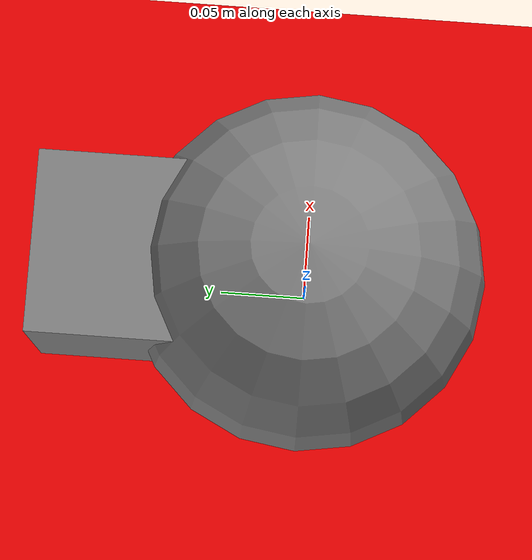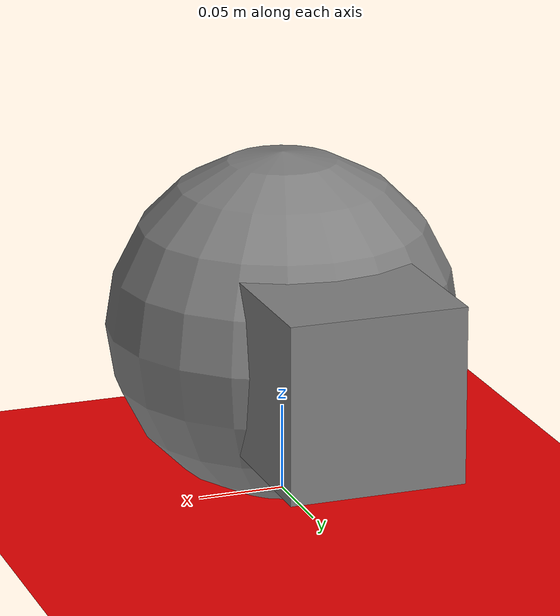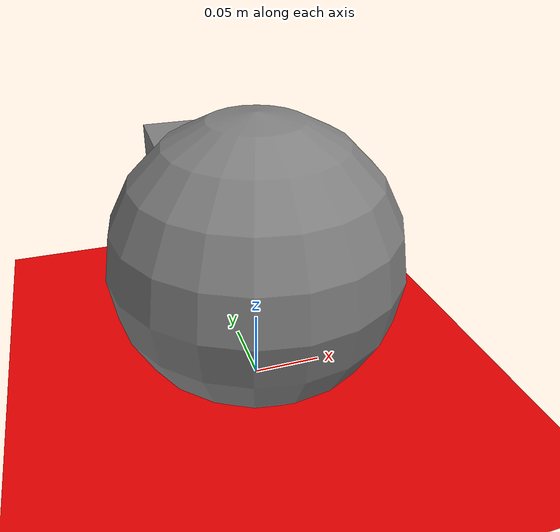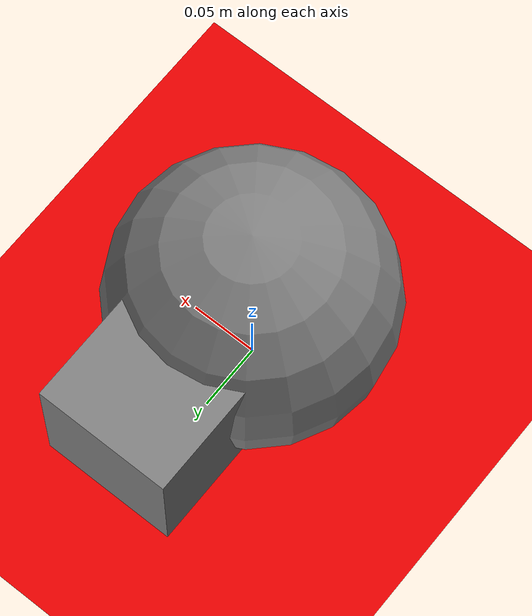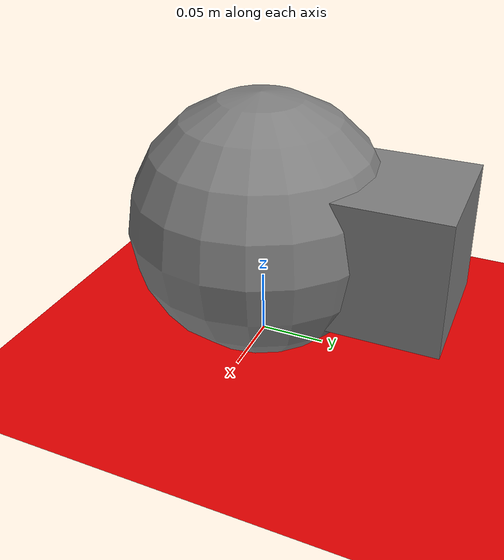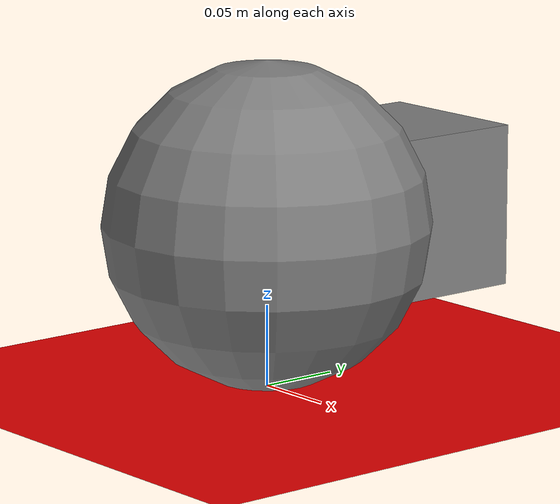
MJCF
<mujoco>
    <worldbody>

        <light diffuse="0.5 0.5 0.5" pos="0 0 2" dir="0 -1 0"/>
        <geom type="plane" size="1 1 0.1" rgba="0.9 0 0 1"/>

        <body pos="0 0 0.1">
			<joint type="slide" axis="1 0 0"/>
			<joint type="slide" axis="0 0 1"/>
			<joint type="hinge" axis="0 -1 0"/>
			<geom type="sphere" size=".1"/>
            <body pos="0 0.1 0">
                <geom type="box" size=".05 .05 .05"/>
            </body>
		</body>

    </worldbody>
</mujoco>
